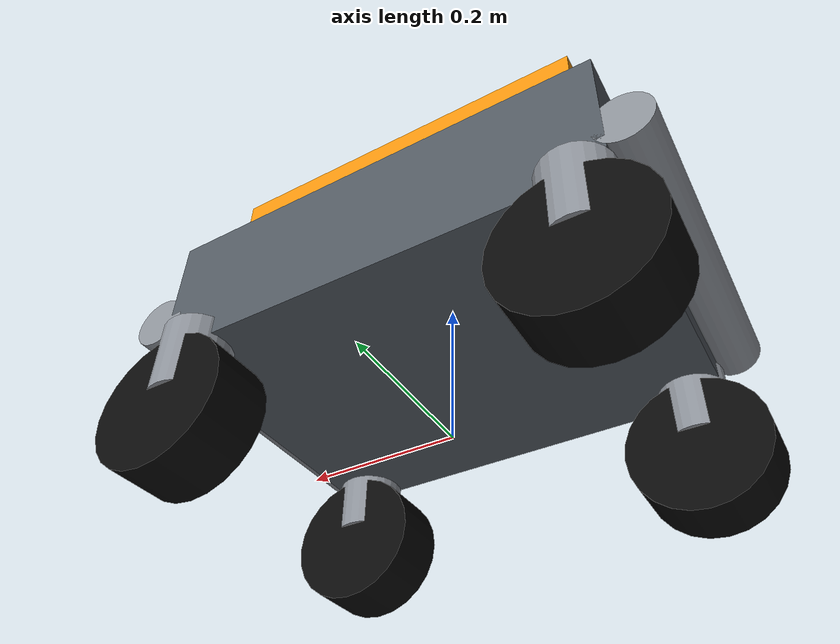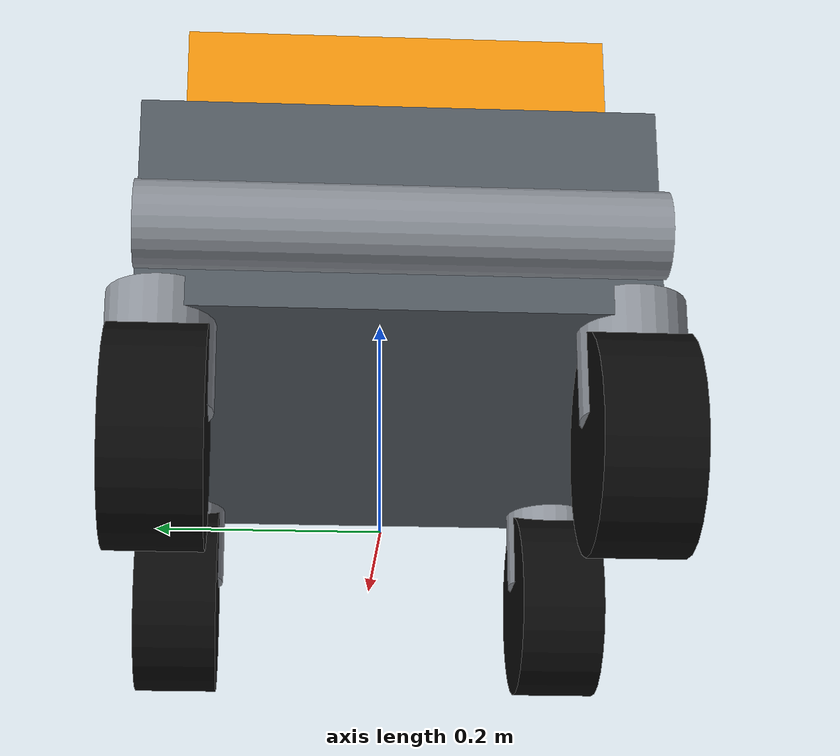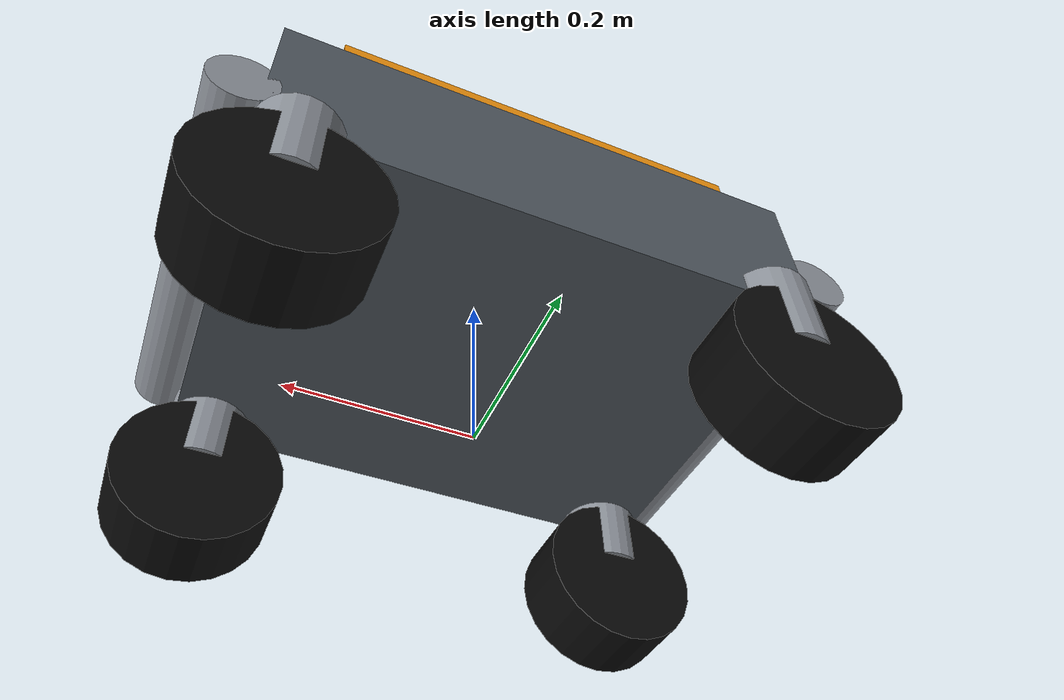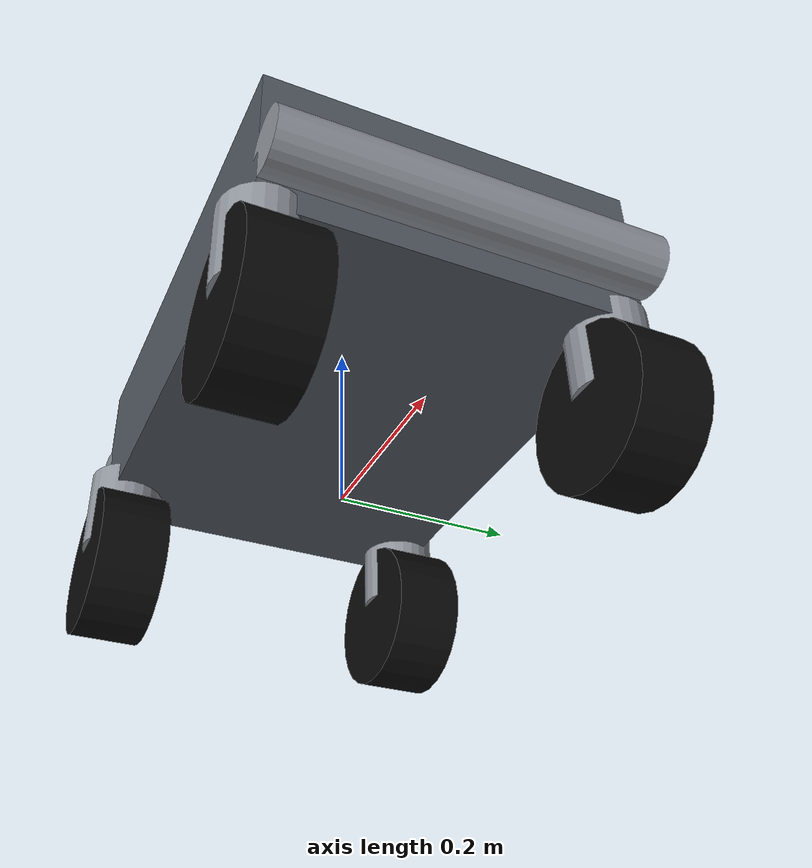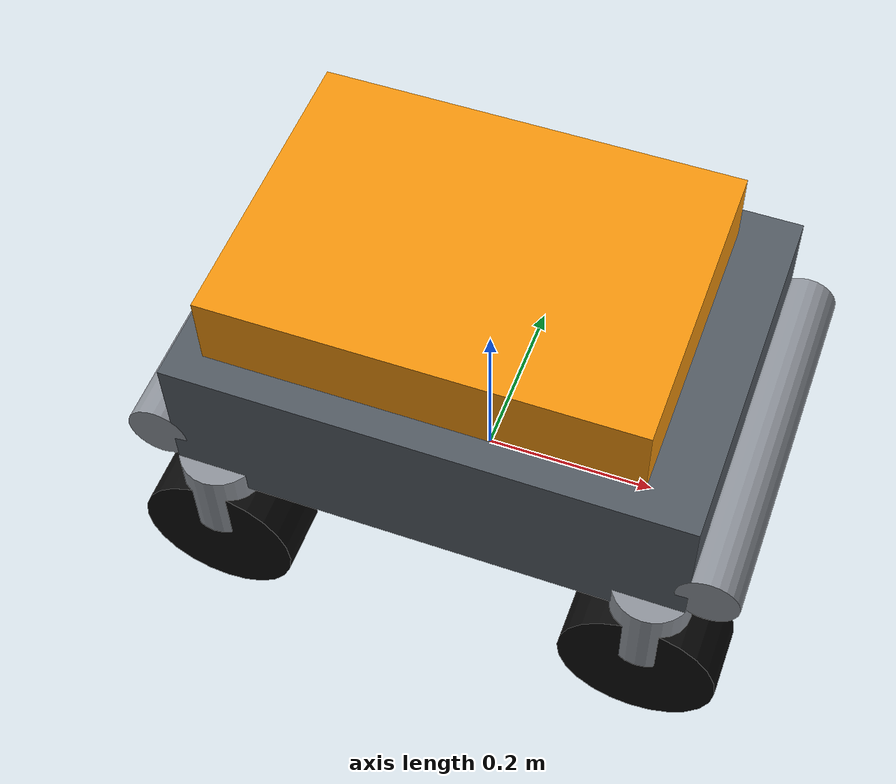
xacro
<?xml version="1.0"?>
<robot xmlns:xacro="http://www.ros.org/wiki/xacro" name="ranger_mini_v3">
  <xacro:property name="wheel_radius" value="0.09"/>
  <xacro:property name="wheel_width" value="0.08"/>
  <xacro:property name="wheel_x" value="0.25"/>
  <xacro:property name="wheel_y" value="0.19"/>
  <xacro:property name="base_height" value="0.22"/>

  <material name="ranger_grey">
    <color rgba="0.32 0.35 0.38 1.0"/>
  </material>
  <material name="ranger_yellow">
    <color rgba="0.95 0.58 0.05 1.0"/>
  </material>
  <material name="wheel_black">
    <color rgba="0.04 0.04 0.04 1.0"/>
  </material>
  <material name="metal">
    <color rgba="0.55 0.57 0.60 1.0"/>
  </material>

  <link name="base_footprint"/>
  <joint name="base_footprint_joint" type="fixed">
    <parent link="base_footprint"/>
    <child link="base_link"/>
    <origin xyz="0 0 ${base_height}" rpy="0 0 0"/>
  </joint>

  <link name="base_link">
    <visual name="lower_body">
      <origin xyz="0 0 -0.035" rpy="0 0 0"/>
      <geometry>
        <box size="0.58 0.42 0.18"/>
      </geometry>
      <material name="ranger_grey"/>
    </visual>
    <visual name="upper_body">
      <origin xyz="-0.015 0 0.095" rpy="0 0 0"/>
      <geometry>
        <box size="0.48 0.35 0.09"/>
      </geometry>
      <material name="ranger_yellow"/>
    </visual>
    <visual name="front_bumper">
      <origin xyz="0.31 0 -0.065" rpy="1.5708 0 0"/>
      <geometry>
        <cylinder radius="0.035" length="0.42"/>
      </geometry>
      <material name="metal"/>
    </visual>
    <visual name="rear_bumper">
      <origin xyz="-0.31 0 -0.065" rpy="1.5708 0 0"/>
      <geometry>
        <cylinder radius="0.035" length="0.42"/>
      </geometry>
      <material name="metal"/>
    </visual>
  </link>

  <xacro:macro name="steered_wheel" params="prefix x y steering_axis wheel_axis">
    <link name="${prefix}_steering_link">
      <visual>
        <origin xyz="0 0 -0.05" rpy="0 0 0"/>
        <geometry>
          <cylinder radius="0.045" length="0.10"/>
        </geometry>
        <material name="metal"/>
      </visual>
    </link>

    <joint name="${prefix}_steering_joint" type="revolute">
      <parent link="base_link"/>
      <child link="${prefix}_steering_link"/>
      <origin xyz="${x} ${y} -0.10" rpy="0 0 0"/>
      <axis xyz="0 0 ${steering_axis}"/>
      <limit lower="-2.1" upper="2.1" effort="5.0" velocity="6.28"/>
    </joint>

    <link name="${prefix}_wheel_link">
      <visual>
        <origin xyz="0 0 0" rpy="1.5708 0 0"/>
        <geometry>
          <cylinder radius="${wheel_radius}" length="${wheel_width}"/>
        </geometry>
        <material name="wheel_black"/>
      </visual>
    </link>

    <joint name="${prefix}_wheel_joint" type="continuous">
      <parent link="${prefix}_steering_link"/>
      <child link="${prefix}_wheel_link"/>
      <origin xyz="0 0 -0.12" rpy="0 0 0"/>
      <axis xyz="0 ${wheel_axis} 0"/>
    </joint>
  </xacro:macro>

  <xacro:steered_wheel prefix="front_left" x="${wheel_x}" y="${wheel_y}"
                       steering_axis="1" wheel_axis="1"/>
  <xacro:steered_wheel prefix="front_right" x="${wheel_x}" y="${-wheel_y}"
                       steering_axis="-1" wheel_axis="1"/>
  <xacro:steered_wheel prefix="rear_left" x="${-wheel_x}" y="${wheel_y}"
                       steering_axis="1" wheel_axis="1"/>
  <xacro:steered_wheel prefix="rear_right" x="${-wheel_x}" y="${-wheel_y}"
                       steering_axis="-1" wheel_axis="1"/>
</robot>
